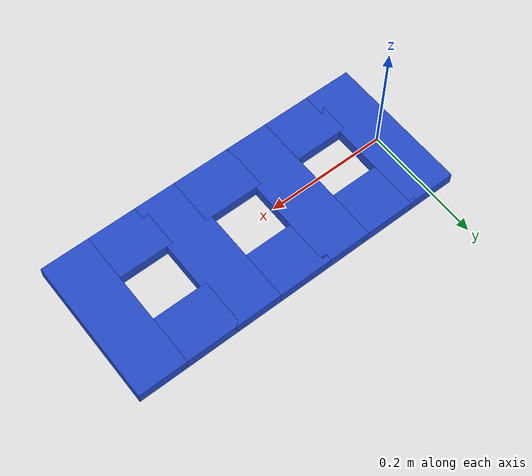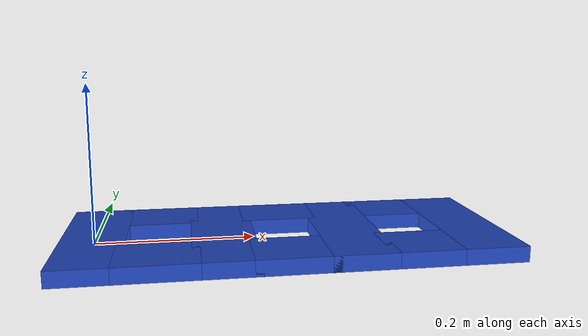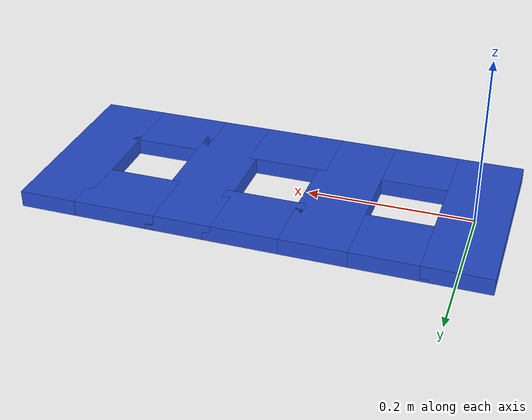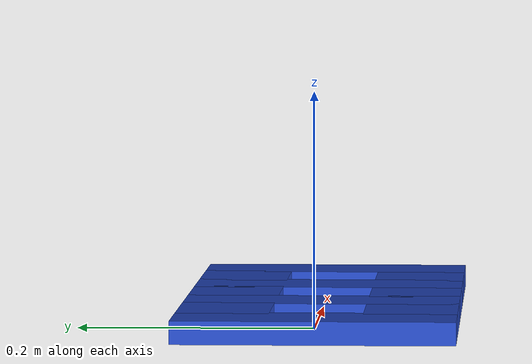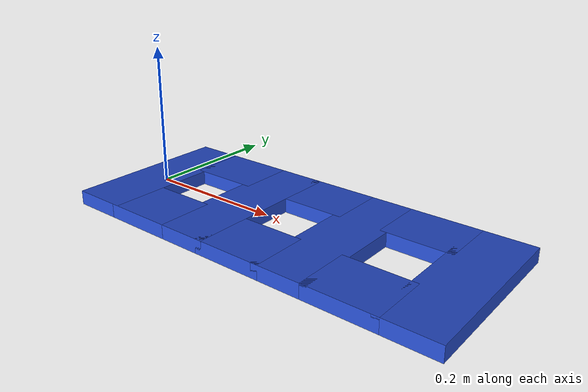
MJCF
<mujoco model="hole">
  <asset>
    <texture file="textures/blue-wood.png" type="cube" name="red-wood" />
    <material name="plate_mat" texture="red-wood" texrepeat="3 3" specular="0.4" shininess="0.1" />
  </asset>
  <worldbody>
    <body>
      <body name="object">
        <body name="hole1" pos="0 0 0">
          <geom pos="0 0 0" size="0.04 0.12 0.01" type="box" group="0" material="plate_mat" />
          <geom pos="0.16 0 0" size="0.04 0.12 0.01" type="box" group="0" material="plate_mat" />
          <geom pos="0.08 0.08 0" size="0.05 0.04 0.01" type="box" group="0" material="plate_mat" />
          <geom pos="0.08 -0.08 0" size="0.05 0.04 0.01" type="box" group="0" material="plate_mat" />
          <site name="goal1" size="0.01" rgba="0 0 1 0" pos="0.08 0 0"/>
        </body>
        <body name="hole2" pos="0.16 0 0">
          <geom pos="0 0 0" size="0.04 0.12 0.01" type="box" group="0" material="plate_mat" />
          <geom pos="0.16 0 0" size="0.04 0.12 0.01" type="box" group="0" material="plate_mat" />
          <geom pos="0.08 0.08 0" size="0.05 0.04 0.01" type="box" group="0" material="plate_mat" />
          <geom pos="0.08 -0.08 0" size="0.05 0.04 0.01" type="box" group="0" material="plate_mat" />
          <site name="goal2" size="0.01" rgba="0 0 1 0" pos="0.08 0 0"/>
        </body>
        <body name="hole3" pos="0.32 0 0">
          <geom pos="0 0 0" size="0.04 0.12 0.01" type="box" group="0" material="plate_mat" />
          <geom pos="0.16 0 0" size="0.04 0.12 0.01" type="box" group="0" material="plate_mat" />
          <geom pos="0.08 0.08 0" size="0.05 0.04 0.01" type="box" group="0" material="plate_mat" />
          <geom pos="0.08 -0.08 0" size="0.05 0.04 0.01" type="box" group="0" material="plate_mat" />
          <site name="goal3" size="0.01" rgba="0 0 1 0" pos="0.08 0 0"/>
        </body>
      </body>
      <site rgba="0 0 0 0" size="0.005" pos="0 0 -0.02" name="bottom_site"/>
      <site rgba="0 0 0 0" size="0.005" pos="0 0 0.02" name="top_site"/>
      <site rgba="0 0 0 0" size="0.005" pos="0.25 0.25 0.1" name="horizontal_radius_site"/>
    </body>
  </worldbody>
</mujoco>
